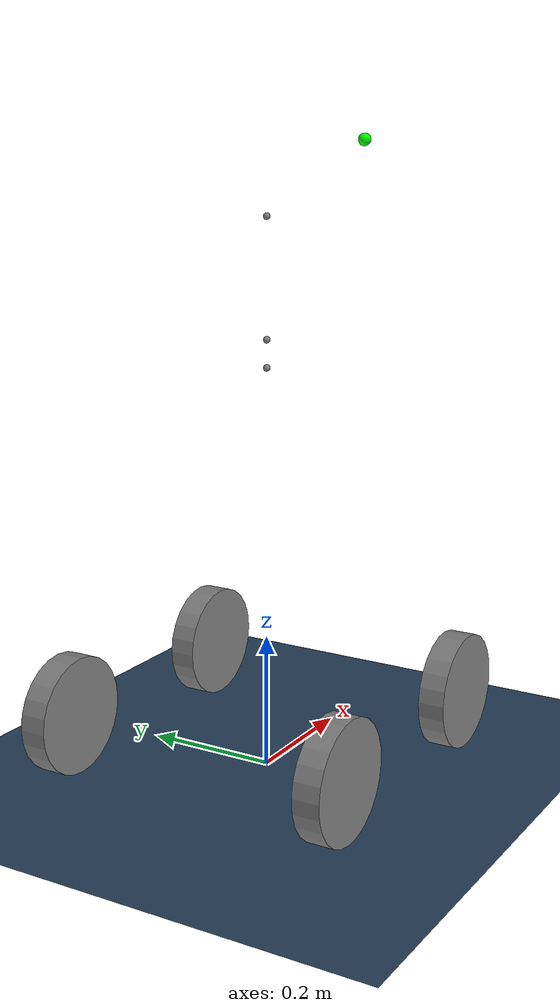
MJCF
<mujoco model="d1_arm scene">
  <include file="d1_with_arm.xml"/>

  <statistic center="0 0 0.3" extent="1.2" meansize="0.06"/>

  <visual>
    <headlight diffuse="0.6 0.6 0.6" ambient="0.3 0.3 0.3" specular="0 0 0"/>
    <rgba haze="0.15 0.25 0.35 1"/>
    <global azimuth="-130" elevation="-20"/>
  </visual>

  <asset>
    <texture type="skybox" builtin="gradient" rgb1="0.3 0.5 0.7" rgb2="0 0 0" width="512" height="3072"/>
    <texture type="2d" name="groundplane" builtin="checker" mark="edge" rgb1="0.2 0.3 0.4" rgb2="0.1 0.2 0.3"
      markrgb="0.8 0.8 0.8" width="300" height="300"/>
    <material name="groundplane" texture="groundplane" texuniform="true" texrepeat="5 5" reflectance="0.2"/>
  </asset>

  <worldbody>
    <light pos="0 0 3" dir="0 0 -1" directional="true"/>
    <geom name="floor" size="0 0 0.05" type="plane" material="groundplane"/>
  </worldbody>

  <sensor>
    <!-- Foot contact sensors -->
    <contact name="FL_foot_contact" geom1="floor" geom2="FL_wheel_geom" data="found" num="1" reduce="mindist"/>
    <contact name="FR_foot_contact" geom1="floor" geom2="FR_wheel_geom" data="found" num="1" reduce="mindist"/>
    <contact name="RL_foot_contact" geom1="floor" geom2="RL_wheel_geom" data="found" num="1" reduce="mindist"/>
    <contact name="RR_foot_contact" geom1="floor" geom2="RR_wheel_geom" data="found" num="1" reduce="mindist"/>

    <!-- Base contact sensors -->
    <contact name="base_front_contact" geom1="floor" geom2="base_front" data="found" num="1" reduce="mindist"/>
    <contact name="base_front_lower_contact" geom1="floor" geom2="base_front_lower" data="found" num="1" reduce="mindist"/>
    <contact name="base_rear_contact" geom1="floor" geom2="base_rear" data="found" num="1" reduce="mindist"/>
    <contact name="base_rear_lower_contact" geom1="floor" geom2="base_rear_lower" data="found" num="1" reduce="mindist"/>

    <!-- Hip contact sensors -->
    <contact name="FL_hip_contact" geom1="floor" geom2="fl_hip_geom" data="found" num="1" reduce="mindist"/>
    <contact name="FR_hip_contact" geom1="floor" geom2="fr_hip_geom" data="found" num="1" reduce="mindist"/>
    <contact name="RL_hip_contact" geom1="floor" geom2="rl_hip_geom" data="found" num="1" reduce="mindist"/>
    <contact name="RR_hip_contact" geom1="floor" geom2="rr_hip_geom" data="found" num="1" reduce="mindist"/>

    <!-- Thigh contact sensors -->
    <contact name="FL_thigh_contact" geom1="floor" geom2="fl_thigh_geom" data="found" num="1" reduce="mindist"/>
    <contact name="FR_thigh_contact" geom1="floor" geom2="fr_thigh_geom" data="found" num="1" reduce="mindist"/>
    <contact name="RL_thigh_contact" geom1="floor" geom2="rl_thigh_geom" data="found" num="1" reduce="mindist"/>
    <contact name="RR_thigh_contact" geom1="floor" geom2="rr_thigh_geom" data="found" num="1" reduce="mindist"/>

    <!-- Calf contact sensors -->
    <contact name="FL_calf_contact" geom1="floor" geom2="fl_calf_geom" data="found" num="1" reduce="mindist"/>
    <contact name="FR_calf_contact" geom1="floor" geom2="fr_calf_geom" data="found" num="1" reduce="mindist"/>
    <contact name="RL_calf_contact" geom1="floor" geom2="rl_calf_geom" data="found" num="1" reduce="mindist"/>
    <contact name="RR_calf_contact" geom1="floor" geom2="rr_calf_geom" data="found" num="1" reduce="mindist"/>
  </sensor>

  <keyframe>
    <key name="home" qpos="
      0 0 0.60
      1 0 0 0
      0 0.8 -1.5 0
      0 0.8 -1.5 0
      0 0.8 -1.5 0
      0 0.8 -1.5 0
      0 0 0 1.6 0 -1.6"
      ctrl="0 0.8 -1.5 0  0 0.8 -1.5 0  0 0.8 -1.5 0  0 0.8 -1.5 0  0 0 0 1.6 0 -1.6"/>
  </keyframe>
</mujoco>

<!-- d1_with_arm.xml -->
<mujoco model="d1">
  <compiler angle="radian" autolimits="true"/>

  <option iterations="1" ls_iterations="5" timestep="0.004" integrator="Euler">
    <flag eulerdamp="disable"/>
  </option>

  <custom>
    <numeric data="30" name="max_contact_points"/>
    <numeric data="12" name="max_geom_pairs"/>
  </custom>

  <default>
    <default class="obj_collision">
      <geom group="3" contype="1" conaffinity="1"/>
    </default>

    <default class="airbot_play">
      <joint axis="0 0 1" armature="0.01" damping="1" frictionloss="5"/>
      <position inheritrange="1" kp="35" forcerange="-18 18"/>
      <default class="joint1">
        <joint range="-3.1416 2.0944" actuatorfrcrange="-24 24" damping="0.2" frictionloss="1"/>
      </default>
      <default class="joint2">
        <joint range="-2.9671 0.17453" actuatorfrcrange="-24 24" damping="0.2" frictionloss="1"/>
      </default>
      <default class="joint3">
        <joint range="-0.087266 3.1416" actuatorfrcrange="-24 24" damping="0.2" frictionloss="1"/>
      </default>
      <default class="joint4">
        <joint range="-3.0107 3.0107" actuatorfrcrange="-8 8" damping="0.1" frictionloss="0.5"/>
        <position forcerange="-8 8"/>
      </default>
      <default class="joint5">
        <joint range="-1.7628 1.7628" actuatorfrcrange="-8 8" damping="0.1" frictionloss="0.5"/>
        <position forcerange="-8 8"/>
      </default>
      <default class="joint6">
        <joint range="-3.0107 3.0107" actuatorfrcrange="-8 8" damping="0.1" frictionloss="0.5"/>
        <position forcerange="-8 8"/>
      </default>
    </default>

    <default class="d1">
      <geom friction="0.6" margin="0.001" condim="1"/>
      <joint damping="0.5" armature="0.01" frictionloss="0.2"/>
    </default>
    <default class="d1_hip">
      <joint axis="0 0 1" range="-0.785398 0.785398"/>
    </default>
    <default class="d1_thigh">
      <joint axis="0 0 1" range="-1.8326 3.40339"/>
    </default>
    <default class="d1_calf">
      <joint axis="0 0 1" range="-2.775 -0.855"/>
    </default>
    <default class="d1_wheel">
      <joint axis="0 0 1" range="-1000000 1000000"/>
    </default>
  </default>

  <worldbody>
    <body name="base" pos="0 0 0.60" childclass="d1">
      <camera name="track" pos="1.0 -1.8 1.1" xyaxes="0.866 0.500 0.000 -0.171 0.296 0.940" mode="trackcom"/>
      <inertial pos="0.0 0.0 -0.02" mass="22.65" diaginertia="0.18 0.95 0.95"/>
      <freejoint/>

      <!-- Base collision geoms -->
      <geom name="base_front" type="box" size="0.1375 0.075 0.0875" pos="0.1875 0 0" class="obj_collision"/>
      <geom name="base_front_lower" type="box" size="0.155 0.06 0.03" pos="0.1875 0 -0.12" class="obj_collision"/>
      <geom name="base_rear" type="box" size="0.1375 0.075 0.0875" pos="-0.1875 0 0" class="obj_collision"/>
      <geom name="base_rear_lower" type="box" size="0.155 0.06 0.03" pos="-0.1875 0 -0.12" class="obj_collision"/>

      <site name="base_site"/>
      <site name="imu" pos="0 0 0.04"/>

      <!-- ======= FL LEG ======= -->
      <body name="FL_hip" pos="0.282 0.0775 0" quat="0.499998 0.5 0.500002 0.5">
        <inertial pos="-0.0181435 -7.96e-06 -0.0936513" mass="1.69464"
          diaginertia="0.00379302 0.0027607 0.00214447"
          quat="0.999969 0.002505 0.00743808 -9.41679e-05"/>
        <joint name="FL_hip_joint" class="d1_hip"/>
        <geom name="fl_hip_geom" type="box" size="0.04 0.04 0.04" pos="-0.018 0 -0.094" class="obj_collision"/>
        <body name="FL_thigh" pos="0.0905 0 -0.0945" quat="0.500098 -0.5001 0.499902 -0.4999">
          <inertial pos="0.0289509 0.00356333 -0.0281156" mass="2.55232"
            diaginertia="0.0182972 0.0174693 0.00380065"
            quat="-0.0769104 0.652025 5.23527e-05 0.754286"/>
          <joint name="FL_thigh_joint" class="d1_thigh"/>
          <geom name="fl_thigh_geom" type="box" size="0.13 0.045 0.025" pos="0.06 0.02 0"
            quat="0.991445 0 0 0.130526" class="obj_collision"/>
          <body name="FL_calf" pos="0.25 0 0">
            <inertial pos="0.125063 0.00606587 0.00312587" mass="0.46345"
              diaginertia="0.00494513 0.00490922 0.000208685"
              quat="-0.0425827 0.690156 -0.0920102 0.716523"/>
            <joint name="FL_calf_joint" class="d1_calf"/>
            <geom name="fl_calf_geom" type="box" size="0.12 0.02 0.025" pos="0.15 0.01 0"
              quat="0.9992 0 0 -0.0399893" class="obj_collision"/>
            <body name="FL_foot" pos="0.25 0 0.052166">
              <inertial pos="-2.82e-06 0 -0.00091845" mass="1.6631"
                diaginertia="0.00760863 0.00398501 0.00393673"
                quat="0.334356 0.623085 -0.334302 0.623067"/>
              <joint name="FL_foot_joint" class="d1_wheel"/>
              <geom name="FL_wheel_geom" type="cylinder" size="0.087 0.02"
                friction="0.8 0.02 0.01" condim="6" priority="1"
                solimp="0.015 1 0.022" contype="1" conaffinity="1"/>
              <site name="FL" pos="0 0 0" type="sphere" size="0.023" group="5"/>
            </body>
          </body>
        </body>
      </body>

      <!-- ======= FR LEG ======= -->
      <body name="FR_hip" pos="0.282 -0.0775 0" quat="0.499998 0.5 0.500002 0.5">
        <inertial pos="0.0181435 -8e-06 -0.0936513" mass="1.69464"
          diaginertia="0.00379302 0.0027607 0.00214447"
          quat="0.999969 0.002505 -0.00743808 9.41679e-05"/>
        <joint name="FR_hip_joint" class="d1_hip"/>
        <geom name="fr_hip_geom" type="box" size="0.04 0.04 0.04" pos="0.018 0 -0.094" class="obj_collision"/>
        <body name="FR_thigh" pos="-0.0905 0 -0.0945" quat="0.499898 -0.4999 0.500102 -0.5001">
          <inertial pos="0.0291816 0.00370278 0.0281157" mass="2.55232"
            diaginertia="0.0182666 0.0174178 0.0038092"
            quat="0.00133055 0.754556 0.0787582 0.651491"/>
          <joint name="FR_thigh_joint" class="d1_thigh"/>
          <geom name="fr_thigh_geom" type="box" size="0.13 0.045 0.025" pos="0.06 0.02 0"
            quat="0.991445 0 0 0.130526" class="obj_collision"/>
          <body name="FR_calf" pos="0.25 0 0">
            <inertial pos="0.125064 0.00606606 -0.0031258" mass="0.463455"
              diaginertia="0.00494517 0.00490926 0.000208687"
              quat="0.0919975 0.716523 0.0425713 0.690159"/>
            <joint name="FR_calf_joint" class="d1_calf"/>
            <geom name="fr_calf_geom" type="box" size="0.12 0.02 0.025" pos="0.15 0.01 0"
              quat="0.9992 0 0 -0.0399893" class="obj_collision"/>
            <body name="FR_foot" pos="0.25 0 -0.052166" quat="0.363988 0 0 0.931404">
              <inertial pos="-2.78e-06 0 0.00091859" mass="1.6631"
                diaginertia="0.00760867 0.00398497 0.0039368"
                quat="0.333846 0.623312 -0.3339 0.62333"/>
              <joint name="FR_foot_joint" class="d1_wheel"/>
              <geom name="FR_wheel_geom" type="cylinder" size="0.087 0.02"
                friction="0.8 0.02 0.01" condim="6" priority="1"
                solimp="0.015 1 0.022" contype="1" conaffinity="1"/>
              <site name="FR" pos="0 0 0" type="sphere" size="0.023" group="5"/>
            </body>
          </body>
        </body>
      </body>

      <!-- ======= RL LEG ======= -->
      <body name="RL_hip" pos="-0.093 0.0775 0" quat="0.499998 0.5 0.500002 0.5">
        <inertial pos="-0.0181435 -7.96e-06 -0.0936513" mass="1.69464"
          diaginertia="0.00379302 0.0027607 0.00214447"
          quat="0.999969 0.002505 0.00743808 -9.41679e-05"/>
        <joint name="RL_hip_joint" class="d1_hip"/>
        <geom name="rl_hip_geom" type="box" size="0.04 0.04 0.04" pos="-0.018 0 -0.094" class="obj_collision"/>
        <body name="RL_thigh" pos="0.0905 0 -0.0945" quat="0.500098 -0.5001 0.499902 -0.4999">
          <inertial pos="0.0289509 0.00356333 -0.0281156" mass="2.55232"
            diaginertia="0.0182972 0.0174693 0.00380065"
            quat="-0.0769104 0.652025 5.23527e-05 0.754286"/>
          <joint name="RL_thigh_joint" class="d1_thigh"/>
          <geom name="rl_thigh_geom" type="box" size="0.13 0.045 0.025" pos="0.06 0.02 0"
            quat="0.991445 0 0 0.130526" class="obj_collision"/>
          <body name="RL_calf" pos="0.25 0 0">
            <inertial pos="0.125063 0.00606587 0.00312587" mass="0.46345"
              diaginertia="0.00494513 0.00490922 0.000208685"
              quat="-0.0425827 0.690156 -0.0920102 0.716523"/>
            <joint name="RL_calf_joint" class="d1_calf"/>
            <geom name="rl_calf_geom" type="box" size="0.12 0.02 0.025" pos="0.15 0.01 0"
              quat="0.9992 0 0 -0.0399893" class="obj_collision"/>
            <body name="RL_foot" pos="0.25 0 0.052166">
              <inertial pos="-2.82e-06 0 -0.00091845" mass="1.6631"
                diaginertia="0.00760863 0.00398501 0.00393673"
                quat="0.334356 0.623085 -0.334302 0.623067"/>
              <joint name="RL_foot_joint" class="d1_wheel"/>
              <geom name="RL_wheel_geom" type="cylinder" size="0.087 0.02"
                friction="0.8 0.02 0.01" condim="6" priority="1"
                solimp="0.015 1 0.022" contype="1" conaffinity="1"/>
              <site name="RL" pos="0 0 0" type="sphere" size="0.023" group="5"/>
            </body>
          </body>
        </body>
      </body>

      <!-- ======= RR LEG ======= -->
      <body name="RR_hip" pos="-0.093 -0.0775 0" quat="0.499998 0.5 0.500002 0.5">
        <inertial pos="0.0181435 -8e-06 -0.0936513" mass="1.69464"
          diaginertia="0.00379302 0.0027607 0.00214447"
          quat="0.999969 0.002505 -0.00743808 9.41679e-05"/>
        <joint name="RR_hip_joint" class="d1_hip"/>
        <geom name="rr_hip_geom" type="box" size="0.04 0.04 0.04" pos="0.018 0 -0.094" class="obj_collision"/>
        <body name="RR_thigh" pos="-0.0905 0 -0.0945" quat="0.499898 -0.4999 0.500102 -0.5001">
          <inertial pos="0.0291816 0.00370278 0.0281157" mass="2.55232"
            diaginertia="0.0182666 0.0174178 0.0038092"
            quat="0.00133055 0.754556 0.0787582 0.651491"/>
          <joint name="RR_thigh_joint" class="d1_thigh"/>
          <geom name="rr_thigh_geom" type="box" size="0.13 0.045 0.025" pos="0.06 0.02 0"
            quat="0.991445 0 0 0.130526" class="obj_collision"/>
          <body name="RR_calf" pos="0.25 0 0">
            <inertial pos="0.125064 0.00606606 -0.0031258" mass="0.463455"
              diaginertia="0.00494517 0.00490926 0.000208687"
              quat="0.0919975 0.716523 0.0425713 0.690159"/>
            <joint name="RR_calf_joint" class="d1_calf"/>
            <geom name="rr_calf_geom" type="box" size="0.12 0.02 0.025" pos="0.15 0.01 0"
              quat="0.9992 0 0 -0.0399893" class="obj_collision"/>
            <body name="RR_foot" pos="0.25 0 -0.052166" quat="0.363988 0 0 0.931404">
              <inertial pos="-2.78e-06 0 0.00091859" mass="1.6631"
                diaginertia="0.00760867 0.00398497 0.0039368"
                quat="0.333846 0.623312 -0.3339 0.62333"/>
              <joint name="RR_foot_joint" class="d1_wheel"/>
              <geom name="RR_wheel_geom" type="cylinder" size="0.087 0.02"
                friction="0.8 0.02 0.01" condim="6" priority="1"
                solimp="0.015 1 0.022" contype="1" conaffinity="1"/>
              <site name="RR" pos="0 0 0" type="sphere" size="0.023" group="5"/>
            </body>
          </body>
        </body>
      </body>

      <!-- ======= AIRBOT PLAY ARM ======= -->
      <body name="arm_base_on_d1" pos="0.0 0 0.0945">
        <site name="armbasepoint" pos="0 0 0.1172"/>
        <body name="arm_base" childclass="airbot_play">
          <inertial pos="0 0 0.03" mass="1.5" diaginertia="0.002 0.002 0.001"/>
          <geom name="arm_base_collision" type="cylinder" pos="0 0 0.06" euler="0 0 0" size="0.04 0.06" class="obj_collision"/>
          <site name="touch_site_base" pos="0 0 0.05" size="0.001" type="sphere" group="3"/>
          <body name="link1" pos="0 0 0.1172">
            <inertial pos="0 0 0" mass="0.5" diaginertia="5e-4 5e-4 2e-4"/>
            <joint name="joint1" class="joint1"/>
            <geom name="link1_collision" type="cylinder" pos="0 0 0" euler="0 0 0" size="0.035 0.04" class="obj_collision"/>
            <site name="touch_site_link1" pos="0 0 0" size="0.001" type="sphere" group="3"/>
            <body name="link2" quat="0.135866 0.135867 -0.69393 0.693932">
              <inertial pos="0.15 0 0" mass="0.8" diaginertia="0.001 0.008 0.008"/>
              <joint name="joint2" class="joint2"/>
              <geom name="link2_collision1" type="box" pos="0.08 0.015 0" euler="0 0 0.15" size="0.11 0.03 0.04" class="obj_collision"/>
              <geom name="link2_collision2" type="box" pos="0.235 0.015 0" euler="0 0 -0.3" size="0.065 0.025 0.045" class="obj_collision"/>
              <site name="touch_site_link2" pos="0.15 0 0" size="0.001" type="sphere" group="3"/>
              <body name="link3" pos="0.27009 0 0" quat="0.192144 0 0 -0.981367">
                <inertial pos="0.13 0 0" mass="0.6" diaginertia="5e-4 0.005 0.005"/>
                <joint name="joint3" class="joint3"/>
                <geom name="link3_collision" type="box" pos="0.13 0 0" size="0.13 0.025 0.025" class="obj_collision"/>
                <site name="touch_site_link3" pos="0.13 0 0" size="0.001" type="sphere" group="3"/>
                <body name="link4" pos="0.29015 0 0" quat="-2.59734e-06 0.707105 2.59735e-06 0.707108">
                  <inertial pos="0 0 0" mass="0.3" diaginertia="2e-4 2e-4 1e-4"/>
                  <joint name="joint4" class="joint4"/>
                  <geom name="link4_collision" type="cylinder" pos="0 0 0" euler="1.5708 0 0" size="0.03 0.03" class="obj_collision"/>
                  <site name="touch_site_link4" pos="0 0 0" size="0.001" type="sphere" group="3"/>
                  <body name="link5" quat="0.707105 0.707108 0 0">
                    <inertial pos="0 0.06 0" mass="0.25" diaginertia="1.5e-4 1.5e-4 8e-5"/>
                    <joint name="joint5" class="joint5"/>
                    <geom name="link5_collision" type="cylinder" pos="0 0.06 0" euler="1.5708 0 0" size="0.03 0.03" class="obj_collision"/>
                    <site name="touch_site_link5" pos="0 0.06 0" size="0.001" type="sphere" group="3"/>
                    <body name="link6" pos="0 0.23645 0" quat="0.499998 -0.5 0.5 0.500002">
                      <inertial pos="-0.0047053 7.3857e-05 -0.12293" mass="0.53855" diaginertia="5e-05 5e-05 3.85e-05"/>
                      <joint name="joint6" class="joint6"/>
                      <geom name="link6_collision" type="box" pos="0 0 -0.07" size="0.025 0.08 0.015" class="obj_collision"/>
                      <site name="endpoint" pos="0 0 0.015" euler="0 -1.5708 0" size="0.01" type="sphere" rgba="0 1 0 1"/>
                      <site name="touch_site_link6" pos="0 0 -0.07" size="0.001" type="sphere" group="3"/>
                      <body name="eef_connect_base_link">
                        <geom name="eef_collision" type="sphere" size=".012" pos="0 0 0.015" class="obj_collision"/>
                        <site name="touch_site_eef" pos="0 0 0.015" size="0.001" type="sphere" group="3"/>
                      </body>
                    </body>
                  </body>
                </body>
              </body>
            </body>
          </body>
        </body>
      </body>

    </body>
  </worldbody>

  <contact>
    <exclude body1="arm_base" body2="link1"/>
    <exclude body1="arm_base" body2="link2"/>
    <exclude body1="link1" body2="link2"/>
    <exclude body1="link2" body2="link3"/>
    <exclude body1="link3" body2="link4"/>
    <exclude body1="link4" body2="link5"/>
    <exclude body1="link5" body2="link6"/>
    <exclude body1="link6" body2="eef_connect_base_link"/>
  </contact>

  <actuator>

    <!-- FL leg -->
    <general name="FL_hip" joint="FL_hip_joint" biastype="affine" gainprm="60 0 0" biasprm="0 -60 -1.5" forcerange="-80 80" ctrlrange="-0.785 0.785"/>
    <general name="FL_thigh" joint="FL_thigh_joint" biastype="affine" gainprm="60 0 0" biasprm="0 -60 -1.5" forcerange="-80 80" ctrlrange="-1.83 3.4"/>
    <general name="FL_calf" joint="FL_calf_joint" biastype="affine" gainprm="60 0 0" biasprm="0 -60 -1.5" forcerange="-80 80" ctrlrange="-2.775 -0.855"/>
    <velocity name="FL_wheel" joint="FL_foot_joint" kv="0.5" forcerange="-12 12" ctrlrange="-30 30"/>
    <!-- FR leg -->
    <general name="FR_hip" joint="FR_hip_joint" biastype="affine" gainprm="60 0 0" biasprm="0 -60 -1.5" forcerange="-80 80" ctrlrange="-0.785 0.785"/>
    <general name="FR_thigh" joint="FR_thigh_joint" biastype="affine" gainprm="60 0 0" biasprm="0 -60 -1.5" forcerange="-80 80" ctrlrange="-1.83 3.4"/>
    <general name="FR_calf" joint="FR_calf_joint" biastype="affine" gainprm="60 0 0" biasprm="0 -60 -1.5" forcerange="-80 80" ctrlrange="-2.775 -0.855"/>
    <velocity name="FR_wheel" joint="FR_foot_joint" kv="0.5" forcerange="-12 12" ctrlrange="-30 30"/>
    <!-- RL leg -->
    <general name="RL_hip" joint="RL_hip_joint" biastype="affine" gainprm="60 0 0" biasprm="0 -60 -1.5" forcerange="-80 80" ctrlrange="-0.785 0.785"/>
    <general name="RL_thigh" joint="RL_thigh_joint" biastype="affine" gainprm="60 0 0" biasprm="0 -60 -1.5" forcerange="-80 80" ctrlrange="-1.83 3.4"/>
    <general name="RL_calf" joint="RL_calf_joint" biastype="affine" gainprm="60 0 0" biasprm="0 -60 -1.5" forcerange="-80 80" ctrlrange="-2.775 -0.855"/>
    <velocity name="RL_wheel" joint="RL_foot_joint" kv="0.5" forcerange="-12 12" ctrlrange="-30 30"/>
    <!-- RR leg -->
    <general name="RR_hip" joint="RR_hip_joint" biastype="affine" gainprm="60 0 0" biasprm="0 -60 -1.5" forcerange="-80 80" ctrlrange="-0.785 0.785"/>
    <general name="RR_thigh" joint="RR_thigh_joint" biastype="affine" gainprm="60 0 0" biasprm="0 -60 -1.5" forcerange="-80 80" ctrlrange="-1.83 3.4"/>
    <general name="RR_calf" joint="RR_calf_joint" biastype="affine" gainprm="60 0 0" biasprm="0 -60 -1.5" forcerange="-80 80" ctrlrange="-2.775 -0.855"/>
    <velocity name="RR_wheel" joint="RR_foot_joint" kv="0.5" forcerange="-12 12" ctrlrange="-30 30"/>

    <!-- Arm position actuators: 6 total (Kp/Kd set at runtime) -->
    <position joint="joint1" class="joint1" forcerange="-24 24" forcelimited="true" ctrllimited="true"/>
    <position joint="joint2" class="joint2" forcerange="-24 24" forcelimited="true" ctrllimited="true"/>
    <position joint="joint3" class="joint3" forcerange="-24 24" forcelimited="true" ctrllimited="true"/>
    <position joint="joint4" class="joint4" forcerange="-8 8" forcelimited="true" ctrllimited="true"/>
    <position joint="joint5" class="joint5" forcerange="-8 8" forcelimited="true" ctrllimited="true"/>
    <position joint="joint6" class="joint6" forcerange="-8 8" forcelimited="true" ctrllimited="true"/>
  </actuator>

  <sensor>
    <!-- D1 leg joint position sensors: 16 total (hip, thigh, calf, foot per leg) -->
    <jointpos joint="FL_hip_joint" name="FL_hip_pos"/>
    <jointpos joint="FL_thigh_joint" name="FL_thigh_pos"/>
    <jointpos joint="FL_calf_joint" name="FL_calf_pos"/>
    <jointpos joint="FL_foot_joint" name="FL_foot_pos"/>
    <jointpos joint="FR_hip_joint" name="FR_hip_pos"/>
    <jointpos joint="FR_thigh_joint" name="FR_thigh_pos"/>
    <jointpos joint="FR_calf_joint" name="FR_calf_pos"/>
    <jointpos joint="FR_foot_joint" name="FR_foot_pos"/>
    <jointpos joint="RL_hip_joint" name="RL_hip_pos"/>
    <jointpos joint="RL_thigh_joint" name="RL_thigh_pos"/>
    <jointpos joint="RL_calf_joint" name="RL_calf_pos"/>
    <jointpos joint="RL_foot_joint" name="RL_foot_pos"/>
    <jointpos joint="RR_hip_joint" name="RR_hip_pos"/>
    <jointpos joint="RR_thigh_joint" name="RR_thigh_pos"/>
    <jointpos joint="RR_calf_joint" name="RR_calf_pos"/>
    <jointpos joint="RR_foot_joint" name="RR_foot_pos"/>

    <!-- D1 leg joint velocity sensors: 16 total -->
    <jointvel joint="FL_hip_joint" name="FL_hip_vel"/>
    <jointvel joint="FL_thigh_joint" name="FL_thigh_vel"/>
    <jointvel joint="FL_calf_joint" name="FL_calf_vel"/>
    <jointvel joint="FL_foot_joint" name="FL_foot_vel"/>
    <jointvel joint="FR_hip_joint" name="FR_hip_vel"/>
    <jointvel joint="FR_thigh_joint" name="FR_thigh_vel"/>
    <jointvel joint="FR_calf_joint" name="FR_calf_vel"/>
    <jointvel joint="FR_foot_joint" name="FR_foot_vel"/>
    <jointvel joint="RL_hip_joint" name="RL_hip_vel"/>
    <jointvel joint="RL_thigh_joint" name="RL_thigh_vel"/>
    <jointvel joint="RL_calf_joint" name="RL_calf_vel"/>
    <jointvel joint="RL_foot_joint" name="RL_foot_vel"/>
    <jointvel joint="RR_hip_joint" name="RR_hip_vel"/>
    <jointvel joint="RR_thigh_joint" name="RR_thigh_vel"/>
    <jointvel joint="RR_calf_joint" name="RR_calf_vel"/>
    <jointvel joint="RR_foot_joint" name="RR_foot_vel"/>

    <!-- IMU sensors -->
    <gyro site="imu" name="gyro"/>
    <accelerometer site="imu" name="accelerometer"/>
    <velocimeter site="imu" name="local_linvel"/>
    <framezaxis objtype="site" objname="imu" name="upvector"/>
    <framequat objtype="site" objname="imu" name="orientation"/>
    <framepos objtype="site" objname="imu" name="global_position"/>
    <framelinvel objtype="site" objname="imu" name="global_linvel"/>
    <frameangvel objtype="site" objname="imu" name="global_angvel"/>

    <!-- Foot world-frame linear velocities -->
    <framelinvel objtype="site" objname="FL" name="FL_global_linvel"/>
    <framelinvel objtype="site" objname="FR" name="FR_global_linvel"/>
    <framelinvel objtype="site" objname="RL" name="RL_global_linvel"/>
    <framelinvel objtype="site" objname="RR" name="RR_global_linvel"/>

    <!-- Foot world-frame positions -->
    <framepos objtype="site" objname="FL" name="FL_pos"/>
    <framepos objtype="site" objname="FR" name="FR_pos"/>
    <framepos objtype="site" objname="RL" name="RL_pos"/>
    <framepos objtype="site" objname="RR" name="RR_pos"/>

    <!-- Arm joint position sensors -->
    <jointpos name="joint1_pos" joint="joint1"/>
    <jointpos name="joint2_pos" joint="joint2"/>
    <jointpos name="joint3_pos" joint="joint3"/>
    <jointpos name="joint4_pos" joint="joint4"/>
    <jointpos name="joint5_pos" joint="joint5"/>
    <jointpos name="joint6_pos" joint="joint6"/>

    <!-- Arm joint velocity sensors -->
    <jointvel name="joint1_vel" joint="joint1"/>
    <jointvel name="joint2_vel" joint="joint2"/>
    <jointvel name="joint3_vel" joint="joint3"/>
    <jointvel name="joint4_vel" joint="joint4"/>
    <jointvel name="joint5_vel" joint="joint5"/>
    <jointvel name="joint6_vel" joint="joint6"/>

    <!-- Arm joint torque sensors -->
    <jointactuatorfrc name="joint1_torque" joint="joint1"/>
    <jointactuatorfrc name="joint2_torque" joint="joint2"/>
    <jointactuatorfrc name="joint3_torque" joint="joint3"/>
    <jointactuatorfrc name="joint4_torque" joint="joint4"/>
    <jointactuatorfrc name="joint5_torque" joint="joint5"/>
    <jointactuatorfrc name="joint6_torque" joint="joint6"/>

    <!-- End-effector sensors relative to armbasepoint -->
    <framepos name="endpoint_pos" objtype="site" objname="endpoint" reftype="site" refname="armbasepoint"/>
    <framequat name="endpoint_quat" objtype="site" objname="endpoint" reftype="site" refname="armbasepoint"/>
    <framelinvel name="endpoint_vel" objtype="site" objname="endpoint" reftype="site" refname="armbasepoint"/>

    <!-- End-effector sensors relative to arm_base_on_d1 -->
    <framepos name="endpoint_relative_pos" objtype="site" objname="endpoint" reftype="body" refname="arm_base_on_d1"/>
    <framequat name="endpoint_relative_quat" objtype="site" objname="endpoint" reftype="body" refname="arm_base_on_d1"/>

    <!-- Arm base world pose -->
    <framepos name="armbasepoint_world_pos" objtype="site" objname="armbasepoint"/>
    <framequat name="armbasepoint_world_quat" objtype="site" objname="armbasepoint"/>

    <!-- Arm link touch sensors -->
    <touch name="arm_touch_base" site="touch_site_base"/>
    <touch name="arm_touch_link1" site="touch_site_link1"/>
    <touch name="arm_touch_link2" site="touch_site_link2"/>
    <touch name="arm_touch_link3" site="touch_site_link3"/>
    <touch name="arm_touch_link4" site="touch_site_link4"/>
    <touch name="arm_touch_link5" site="touch_site_link5"/>
    <touch name="arm_touch_link6" site="touch_site_link6"/>
    <touch name="arm_touch_eef" site="touch_site_eef"/>
  </sensor>
</mujoco>
